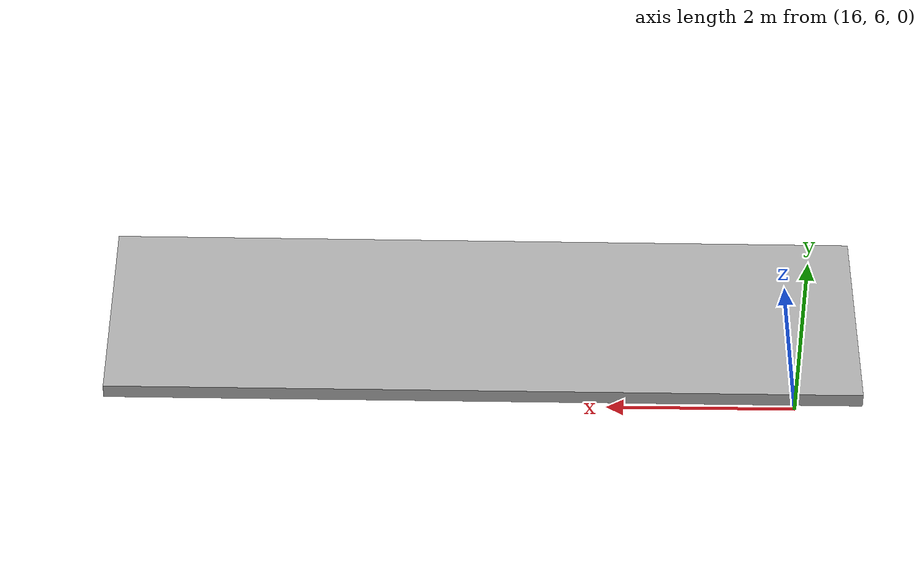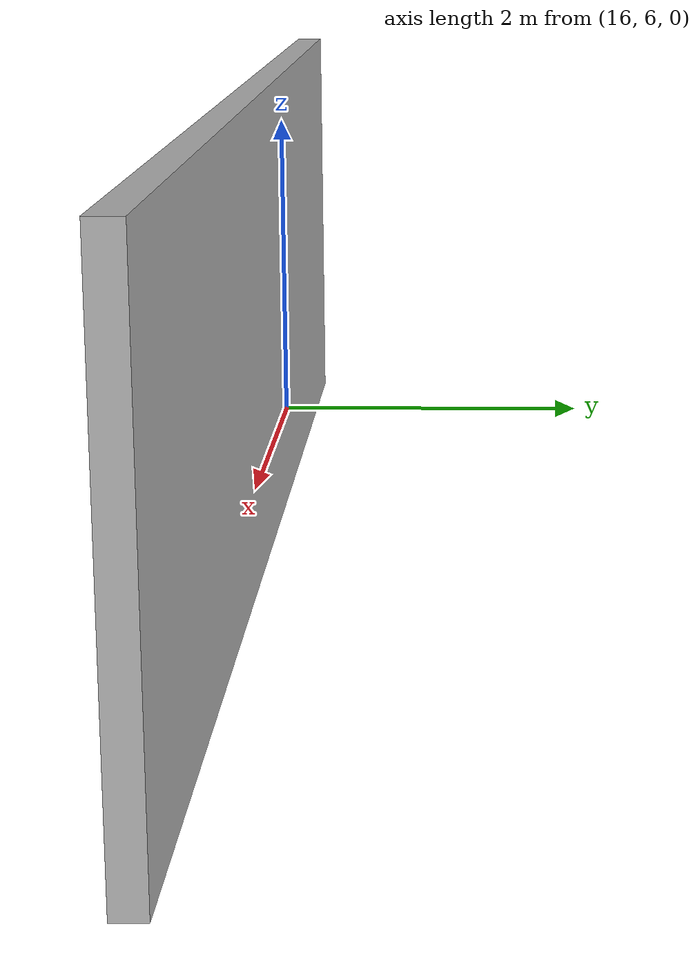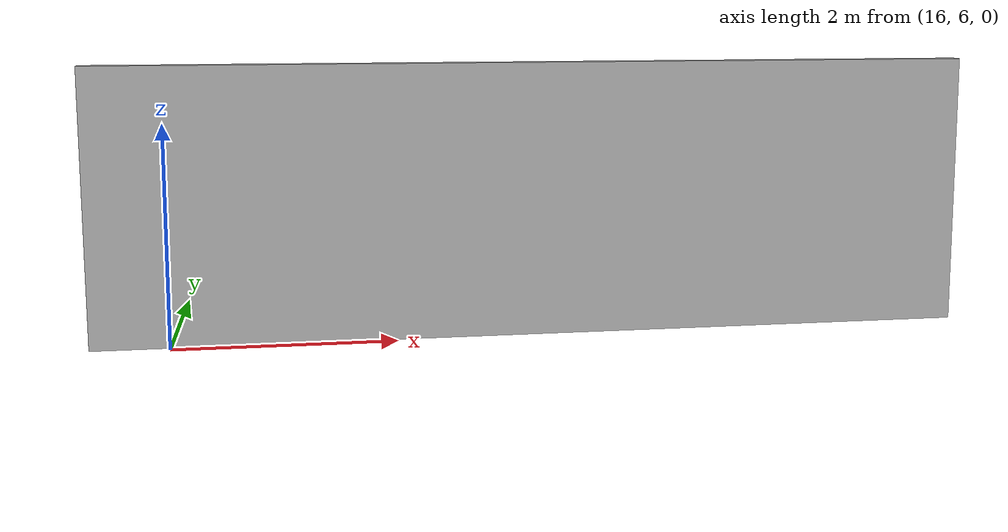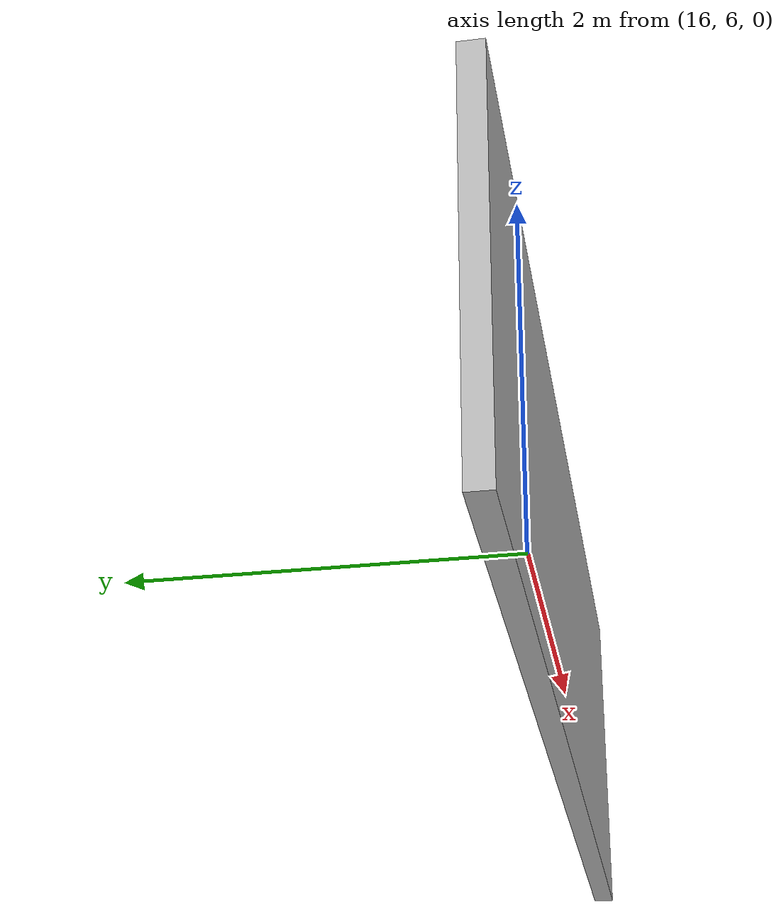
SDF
<?xml version="1.0" ?>
<sdf version="1.6">
  <model name="sps_1750">
    <pose frame="">0 0 0 0 -0 0</pose>
    <static>0</static>
    <self_collide>0</self_collide>
    <allow_auto_disable>0</allow_auto_disable>
    <link name="Wall9748">
      <kinematic>0</kinematic>
      <gravity>1</gravity>
      <self_collide>0</self_collide>
      <collision name="collision">
        <geometry>
          <box>
            <size>8.03395 0.15 2.5</size>
          </box>
        </geometry>
        <pose frame="">0 0 0 0 -0 0</pose>
      </collision>
      <visual name="visual">
        <geometry>
          <box>
            <size>8.03395 0.15 2.5</size>
          </box>
        </geometry>
        <pose frame="">0 0 0 0 -0 0</pose>
        <cast_shadows>1</cast_shadows>
        <transparency>0.0</transparency>
      </visual>
      <pose frame="">19.307 6.13835 1.25 0 -0 0</pose>
    </link>
  </model>
</sdf>
